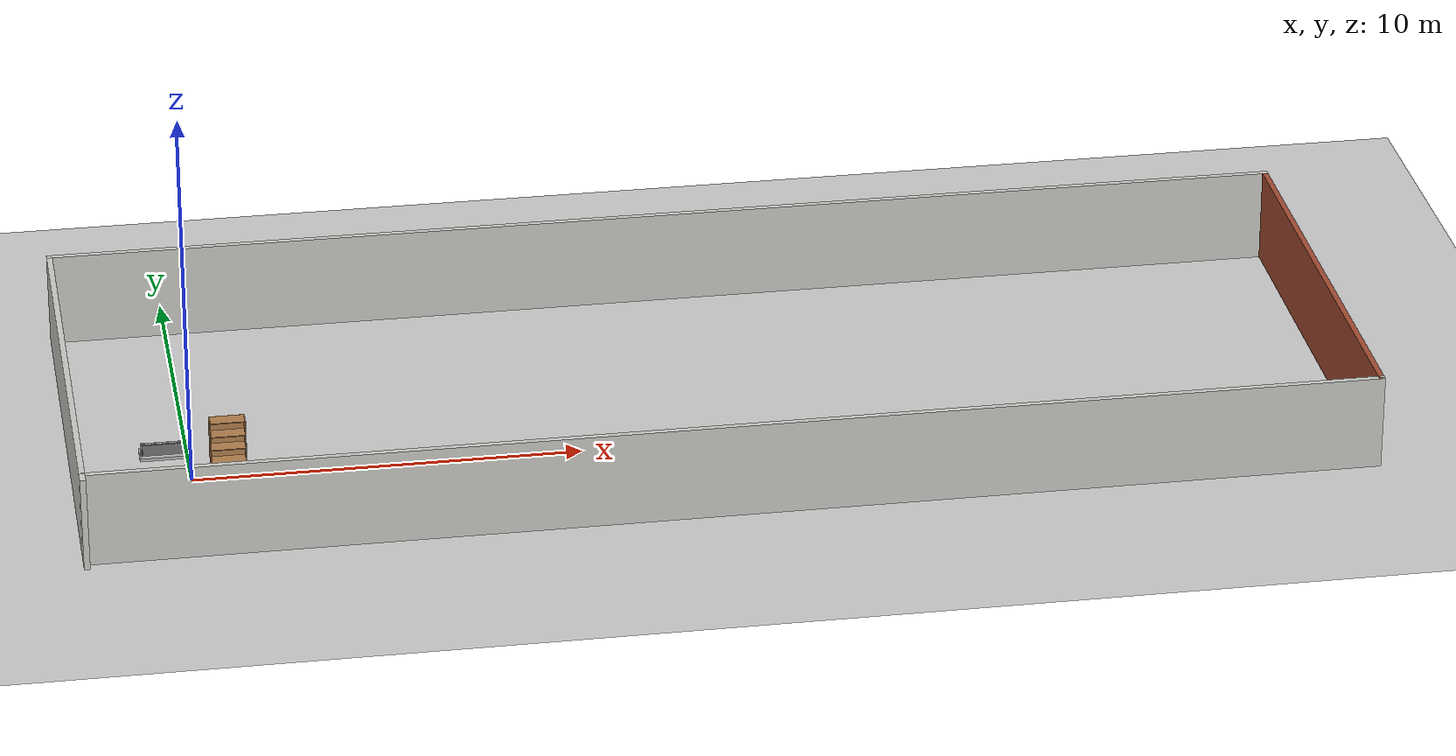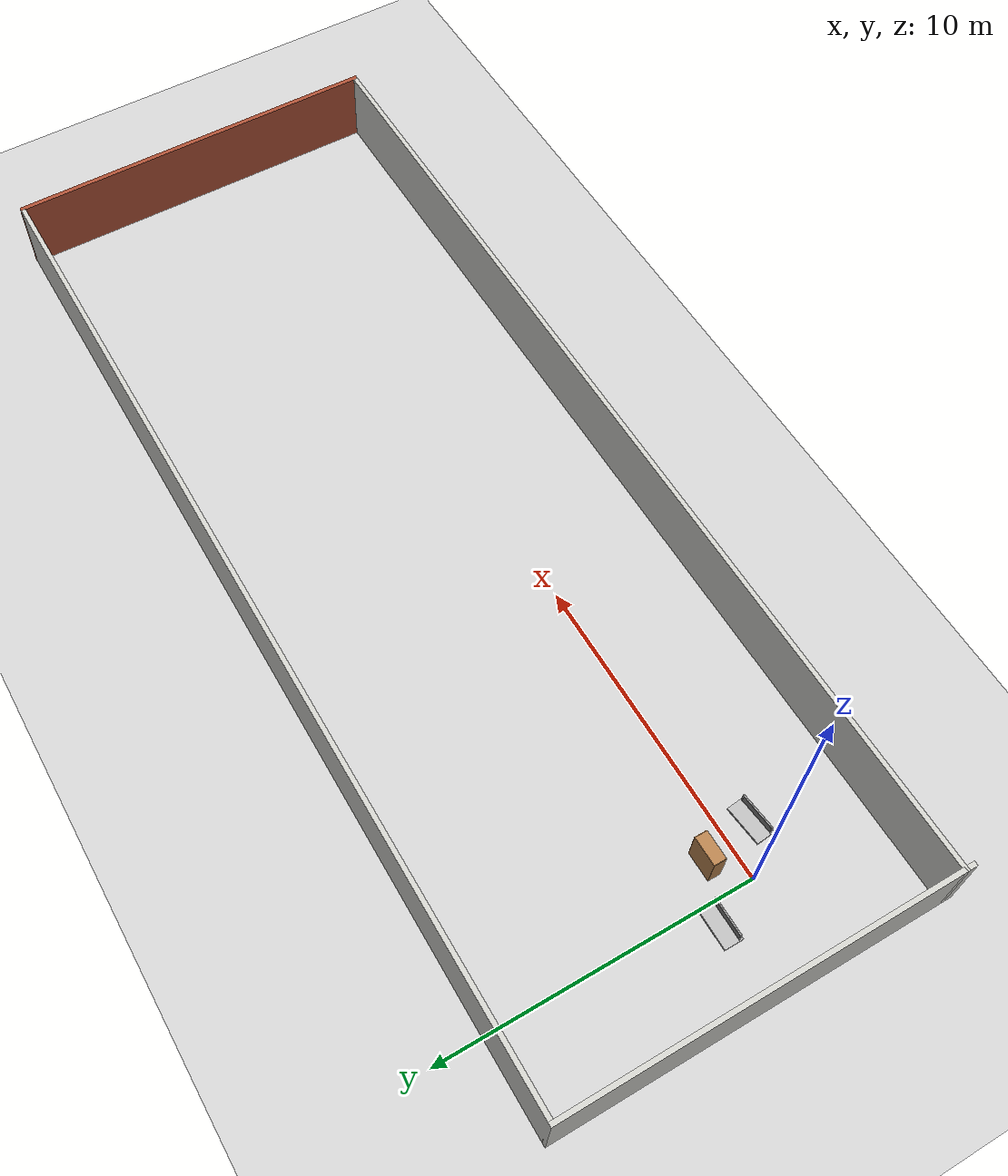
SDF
<sdf version="1.7">
 <world name="default">
  <light name="sun" type="directional">
   <pose>0 0 10 0 -0 0</pose>
   <diffuse>0.8 0.8 0.8 1</diffuse>
   <specular>0.2 0.2 0.2 1</specular>
   <attenuation>
    <range>1000</range>
    <constant>0.9</constant>
    <linear>0.01</linear>
    <quadratic>0.001</quadratic>
   </attenuation>
   <direction>-0.5 0.1 -0.9</direction>
   <spot><inner_angle>0</inner_angle><outer_angle>0</outer_angle><falloff>0</falloff></spot>
  </light>
  <model name="ground_plane">
   <static>1</static>
   <link name="link">
    <collision name="collision">
     <geometry><plane><normal>0 0 1</normal><size>100 100</size></plane></geometry>
     <surface>
      <contact><collide_bitmask>65535</collide_bitmask></contact>
      <friction><ode><mu>100</mu><mu2>50</mu2></ode></friction>
     </surface>
    </collision>
    <visual name="visual">
     <cast_shadows>0</cast_shadows>
     <geometry><plane><normal>0 0 1</normal><size>100 100</size></plane></geometry>
     <material>
      <script><uri>file://media/materials/scripts/gazebo.material</uri><name>Gazebo/Grey</name></script>
     </material>
    </visual>
   </link>
  </model>
  <gravity>0 0 -9.8</gravity>
  <magnetic_field>6e-06 2.3e-05 -4.2e-05</magnetic_field>
  <atmosphere type="adiabatic"/>
  <physics type="ode">
   <max_step_size>0.001</max_step_size>
   <real_time_factor>1</real_time_factor>
   <real_time_update_rate>1000</real_time_update_rate>
  </physics>
  <scene><ambient>0.4 0.4 0.4 1</ambient><background>0.7 0.7 0.7 1</background><shadows>1</shadows></scene>
  <audio><device>default</device></audio>
  <spherical_coordinates>
   <surface_model>EARTH_WGS84</surface_model>
   <latitude_deg>0</latitude_deg>
   <longitude_deg>0</longitude_deg>
   <elevation>0</elevation>
   <heading_deg>0</heading_deg>
  </spherical_coordinates>
  <model name="test2">
   <pose>13.4684 2.08952 0 0 -0 0</pose>
   <link name="Wall_4">
    <collision name="Wall_4_Collision">
     <geometry><box><size>12.75 0.15 2.5</size></box></geometry>
     <pose>0 0 1.25 0 -0 0</pose>
    </collision>
    <visual name="Wall_4_Visual">
     <pose>0 0 1.25 0 -0 0</pose>
     <geometry><box><size>12.75 0.15 2.5</size></box></geometry>
     <material>
      <script><uri>file://media/materials/scripts/gazebo.material</uri><name>Gazebo/CeilingTiled</name></script>
      <ambient>1 1 1 1</ambient>
     </material>
     <meta><layer>0</layer></meta>
    </visual>
    <pose>-16.425 0 0 0 -0 1.5708</pose>
   </link>
   <link name="Wall_5">
    <collision name="Wall_5_Collision">
     <geometry><box><size>33 0.15 2.5</size></box></geometry>
     <pose>0 0 1.25 0 -0 0</pose>
    </collision>
    <visual name="Wall_5_Visual">
     <pose>0 0 1.25 0 -0 0</pose>
     <geometry><box><size>33 0.15 2.5</size></box></geometry>
     <material>
      <script><uri>file://media/materials/scripts/gazebo.material</uri><name>Gazebo/CeilingTiled</name></script>
      <ambient>1 1 1 1</ambient>
     </material>
     <meta><layer>0</layer></meta>
    </visual>
    <pose>0 6.3 0 0 -0 0</pose>
   </link>
   <link name="Wall_6">
    <collision name="Wall_6_Collision">
     <geometry><box><size>12.5 0.15 2.5</size></box></geometry>
     <pose>0 0 1.25 0 -0 0</pose>
    </collision>
    <visual name="Wall_6_Visual">
     <pose>0 0 1.25 0 -0 0</pose>
     <geometry><box><size>12.5 0.15 2.5</size></box></geometry>
     <material>
      <script><uri>file://media/materials/scripts/gazebo.material</uri><name>Gazebo/Bricks</name></script>
      <ambient>1 1 1 1</ambient>
     </material>
     <meta><layer>0</layer></meta>
    </visual>
    <pose>16.425 0.125 0 0 -0 -1.5708</pose>
   </link>
   <link name="Wall_7">
    <collision name="Wall_7_Collision">
     <geometry><box><size>33 0.15 2.5</size></box></geometry>
     <pose>0 0 1.25 0 -0 0</pose>
    </collision>
    <visual name="Wall_7_Visual">
     <pose>0 0 1.25 0 -0 0</pose>
     <geometry><box><size>33 0.15 2.5</size></box></geometry>
     <material>
      <script><uri>file://media/materials/scripts/gazebo.material</uri><name>Gazebo/CeilingTiled</name></script>
      <ambient>1 1 1 1</ambient>
     </material>
     <meta><layer>0</layer></meta>
    </visual>
    <pose>0 -6.05 0 0 -0 3.14159</pose>
   </link>
   <static>1</static>
  </model>
  <model name="bookshelf">
   <static>1</static>
   <link name="link">
    <inertial><mass>1</mass></inertial>
    <collision name="back">
     <pose>0 0.005 0.6 0 -0 0</pose>
     <geometry><box><size>0.9 0.01 1.2</size></box></geometry>
    </collision>
    <visual name="visual1">
     <pose>0 0.005 0.6 0 -0 0</pose>
     <geometry><box><size>0.9 0.01 1.2</size></box></geometry>
     <material>
      <script><uri>file://media/materials/scripts/gazebo.material</uri><name>Gazebo/Wood</name></script>
     </material>
    </visual>
    <collision name="left_side">
     <pose>0.45 -0.195 0.6 0 -0 0</pose>
     <geometry><box><size>0.02 0.4 1.2</size></box></geometry>
    </collision>
    <visual name="visual2">
     <pose>0.45 -0.195 0.6 0 -0 0</pose>
     <geometry><box><size>0.02 0.4 1.2</size></box></geometry>
     <material>
      <script><uri>file://media/materials/scripts/gazebo.material</uri><name>Gazebo/Wood</name></script>
     </material>
    </visual>
    <collision name="right_side">
     <pose>-0.45 -0.195 0.6 0 -0 0</pose>
     <geometry><box><size>0.02 0.4 1.2</size></box></geometry>
    </collision>
    <visual name="visual3">
     <pose>-0.45 -0.195 0.6 0 -0 0</pose>
     <geometry><box><size>0.02 0.4 1.2</size></box></geometry>
     <material>
      <script><uri>file://media/materials/scripts/gazebo.material</uri><name>Gazebo/Wood</name></script>
     </material>
    </visual>
    <collision name="bottom">
     <pose>0 -0.195 0.03 0 -0 0</pose>
     <geometry><box><size>0.88 0.4 0.06</size></box></geometry>
    </collision>
    <visual name="visual4">
     <pose>0 -0.195 0.03 0 -0 0</pose>
     <geometry><box><size>0.88 0.4 0.06</size></box></geometry>
     <material>
      <script><uri>file://media/materials/scripts/gazebo.material</uri><name>Gazebo/Wood</name></script>
     </material>
    </visual>
    <collision name="top">
     <pose>0 -0.195 1.19 0 -0 0</pose>
     <geometry><box><size>0.88 0.4 0.02</size></box></geometry>
    </collision>
    <visual name="visual5">
     <pose>0 -0.195 1.19 0 -0 0</pose>
     <geometry><box><size>0.88 0.4 0.02</size></box></geometry>
     <material>
      <script><uri>file://media/materials/scripts/gazebo.material</uri><name>Gazebo/Wood</name></script>
     </material>
    </visual>
    <collision name="low_shelf">
     <pose>0 -0.195 0.43 0 -0 0</pose>
     <geometry><box><size>0.88 0.4 0.02</size></box></geometry>
    </collision>
    <visual name="visual6">
     <pose>0 -0.195 0.43 0 -0 0</pose>
     <geometry><box><size>0.88 0.4 0.02</size></box></geometry>
     <material>
      <script><uri>file://media/materials/scripts/gazebo.material</uri><name>Gazebo/Wood</name></script>
     </material>
    </visual>
    <collision name="high_shelf">
     <pose>0 -0.195 0.8 0 -0 0</pose>
     <geometry><box><size>0.88 0.4 0.02</size></box></geometry>
    </collision>
    <visual name="visual7">
     <pose>0 -0.195 0.8 0 -0 0</pose>
     <geometry><box><size>0.88 0.4 0.02</size></box></geometry>
     <material>
      <script><uri>file://media/materials/scripts/gazebo.material</uri><name>Gazebo/Wood</name></script>
     </material>
    </visual>
   </link>
   <pose>1.00597 1.09818 0 0 -0 0</pose>
  </model>
  <model name="frc2016_lowbar">
   <link name="base">
    <inertial>
     <mass>50</mass>
     <inertia>
      <ixx>0.035543</ixx>
      <ixy>0</ixy>
      <ixz>0</ixz>
      <iyy>0.134412</iyy>
      <iyz>0</iyz>
      <izz>0.165376</izz>
     </inertia>
    </inertial>
    <visual name="platform">
     <pose>0 0 0.039065 0 -0 0</pose>
     <geometry><box><size>1.26 0.5996 0.07813</size></box></geometry>
    </visual>
    <collision name="platform">
     <pose>0 0 0.039065 0 -0 0</pose>
     <geometry><box><size>1.27 0.6096 0.07813</size></box></geometry>
    </collision>
    <visual name="right_column">
     <pose>-0.57845 -0.18464 0.26863 0 -0 0</pose>
     <geometry><cylinder><radius>0.0254</radius><length>0.381</length></cylinder></geometry>
    </visual>
    <collision name="right_column">
     <pose>-0.57845 -0.18464 0.26863 0 -0 0</pose>
     <geometry><cylinder><radius>0.0254</radius><length>0.381</length></cylinder></geometry>
    </collision>
    <visual name="left_column">
     <pose>0.57845 -0.18464 0.26863 0 -0 0</pose>
     <geometry><cylinder><radius>0.0254</radius><length>0.381</length></cylinder></geometry>
    </visual>
    <collision name="left_column">
     <pose>0.57845 -0.18464 0.26863 0 -0 0</pose>
     <geometry><cylinder><radius>0.0254</radius><length>0.381</length></cylinder></geometry>
    </collision>
    <visual name="horizontal">
     <pose>0 -0.18464 0.43556 0 1.5707 0</pose>
     <geometry><cylinder><radius>0.0254</radius><length>1.2018</length></cylinder></geometry>
    </visual>
    <collision name="horizontal">
     <pose>0 -0.18464 0.43556 0 1.5707 0</pose>
     <geometry><cylinder><radius>0.0254</radius><length>1.2018</length></cylinder></geometry>
    </collision>
   </link>
   <link name="wall">
    <pose>0 -0.1778 0.24323 0 -0 0</pose>
    <inertial>
     <mass>1</mass>
     <inertia>
      <ixx>0.00774528</ixx>
      <ixy>0</ixy>
      <ixz>0</ixz>
      <iyy>0.116613</iyy>
      <iyz>0</iyz>
      <izz>0.108874</izz>
     </inertia>
    </inertial>
    <visual name="visual">
     <geometry><box><size>1.1176 0.00635 0.3</size></box></geometry>
     <material><ambient>0.46 0.46 0.46 1</ambient><diffuse>0.46 0.46 0.46 1</diffuse></material>
    </visual>
    <collision name="collision"><geometry><box><size>1.143 0.00635 0.3</size></box></geometry></collision>
   </link>
   <joint name="bar_joint" type="revolute">
    <pose>0 0 0.36378 0 -0 0</pose>
    <parent>base</parent>
    <child>wall</child>
    <axis>
     <xyz>1 0 0</xyz>
     <limit><lower>-1.5707</lower><upper>1.5707</upper></limit>
     <dynamics><spring_reference>0</spring_reference><spring_stiffness>0</spring_stiffness></dynamics>
    </axis>
   </joint>
   <pose>-0.594799 1.50938 -5e-06 2.5e-05 4e-06 0.00133</pose>
  </model>
  <model name="frc2016_lowbar_clone">
   <link name="base">
    <inertial>
     <mass>50</mass>
     <inertia>
      <ixx>0.035543</ixx>
      <ixy>0</ixy>
      <ixz>0</ixz>
      <iyy>0.134412</iyy>
      <iyz>0</iyz>
      <izz>0.165376</izz>
     </inertia>
    </inertial>
    <visual name="platform">
     <pose>0 0 0.039065 0 -0 0</pose>
     <geometry><box><size>1.26 0.5996 0.07813</size></box></geometry>
    </visual>
    <collision name="platform">
     <pose>0 0 0.039065 0 -0 0</pose>
     <geometry><box><size>1.27 0.6096 0.07813</size></box></geometry>
    </collision>
    <visual name="right_column">
     <pose>-0.57845 -0.18464 0.26863 0 -0 0</pose>
     <geometry><cylinder><radius>0.0254</radius><length>0.381</length></cylinder></geometry>
    </visual>
    <collision name="right_column">
     <pose>-0.57845 -0.18464 0.26863 0 -0 0</pose>
     <geometry><cylinder><radius>0.0254</radius><length>0.381</length></cylinder></geometry>
    </collision>
    <visual name="left_column">
     <pose>0.57845 -0.18464 0.26863 0 -0 0</pose>
     <geometry><cylinder><radius>0.0254</radius><length>0.381</length></cylinder></geometry>
    </visual>
    <collision name="left_column">
     <pose>0.57845 -0.18464 0.26863 0 -0 0</pose>
     <geometry><cylinder><radius>0.0254</radius><length>0.381</length></cylinder></geometry>
    </collision>
    <visual name="horizontal">
     <pose>0 -0.18464 0.43556 0 1.5707 0</pose>
     <geometry><cylinder><radius>0.0254</radius><length>1.2018</length></cylinder></geometry>
    </visual>
    <collision name="horizontal">
     <pose>0 -0.18464 0.43556 0 1.5707 0</pose>
     <geometry><cylinder><radius>0.0254</radius><length>1.2018</length></cylinder></geometry>
    </collision>
   </link>
   <link name="wall">
    <pose>0 -0.1778 0.24323 0 -0 0</pose>
    <inertial>
     <mass>1</mass>
     <inertia>
      <ixx>0.00774528</ixx>
      <ixy>0</ixy>
      <ixz>0</ixz>
      <iyy>0.116613</iyy>
      <iyz>0</iyz>
      <izz>0.108874</izz>
     </inertia>
    </inertial>
    <visual name="visual">
     <geometry><box><size>1.1176 0.00635 0.3</size></box></geometry>
     <material><ambient>0.46 0.46 0.46 1</ambient><diffuse>0.46 0.46 0.46 1</diffuse></material>
    </visual>
    <collision name="collision"><geometry><box><size>1.143 0.00635 0.3</size></box></geometry></collision>
   </link>
   <joint name="bar_joint" type="revolute">
    <pose>0 0 0.36378 0 -0 0</pose>
    <parent>base</parent>
    <child>wall</child>
    <axis>
     <xyz>1 0 0</xyz>
     <limit><lower>-1.5707</lower><upper>1.5707</upper></limit>
     <dynamics><spring_reference>0</spring_reference><spring_stiffness>0</spring_stiffness></dynamics>
    </axis>
   </joint>
   <pose>1.36517 -0.880296 0.011533 7.5e-05 0.01813 0.094665</pose>
  </model>
 </world>
</sdf>
